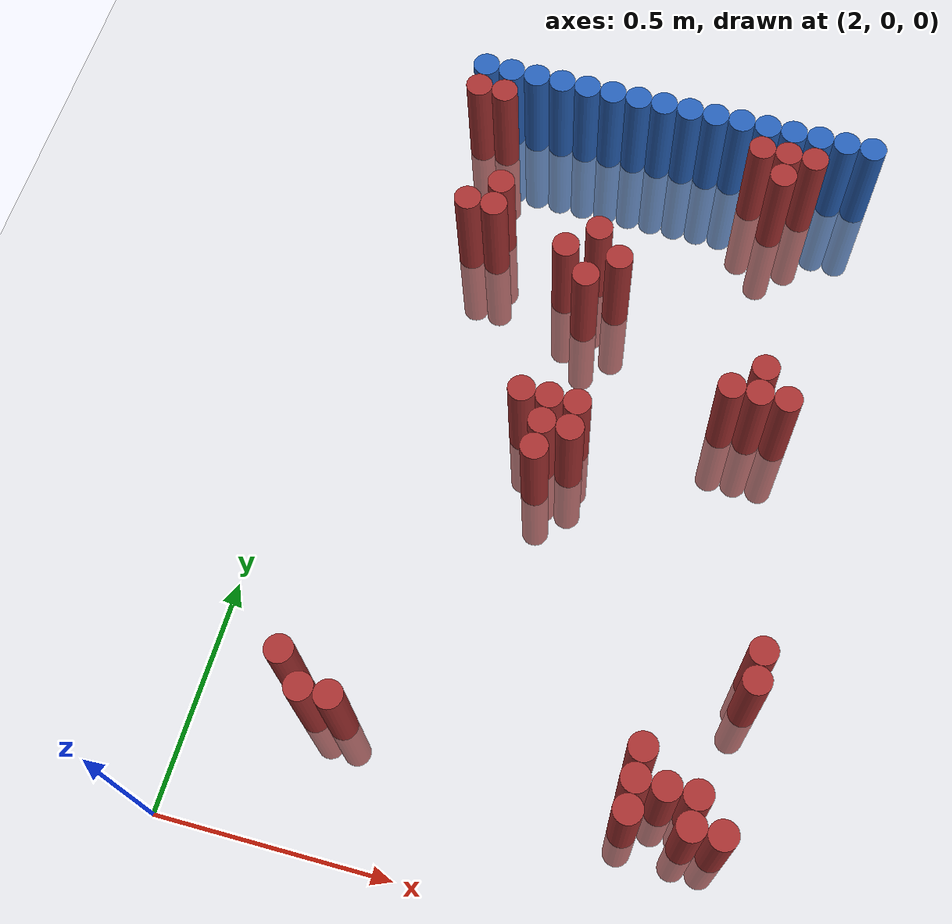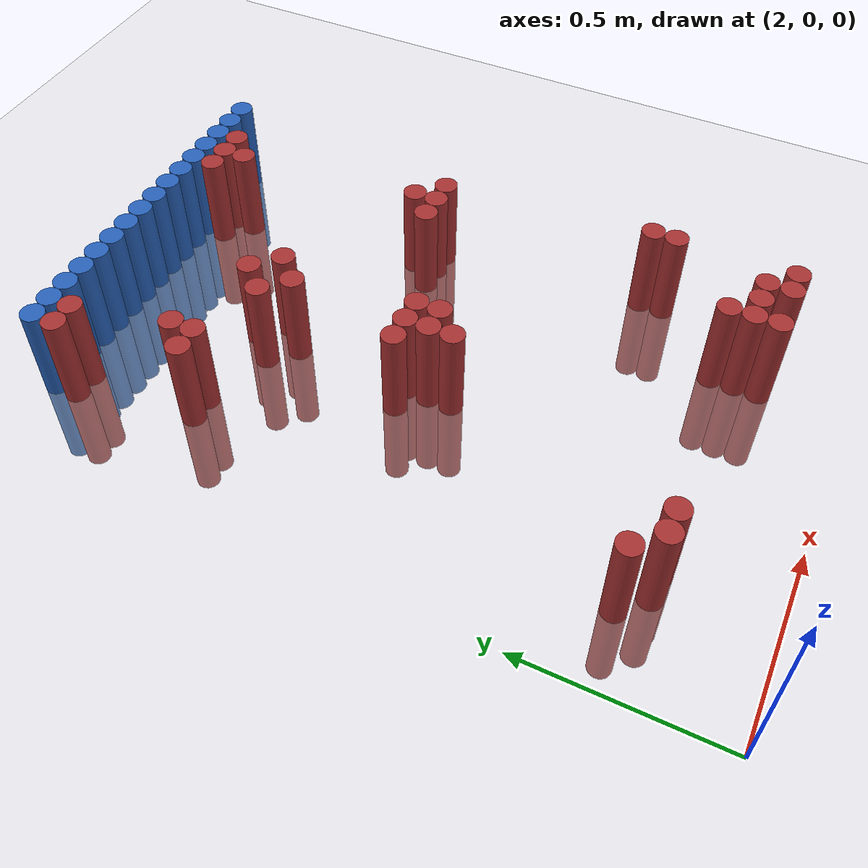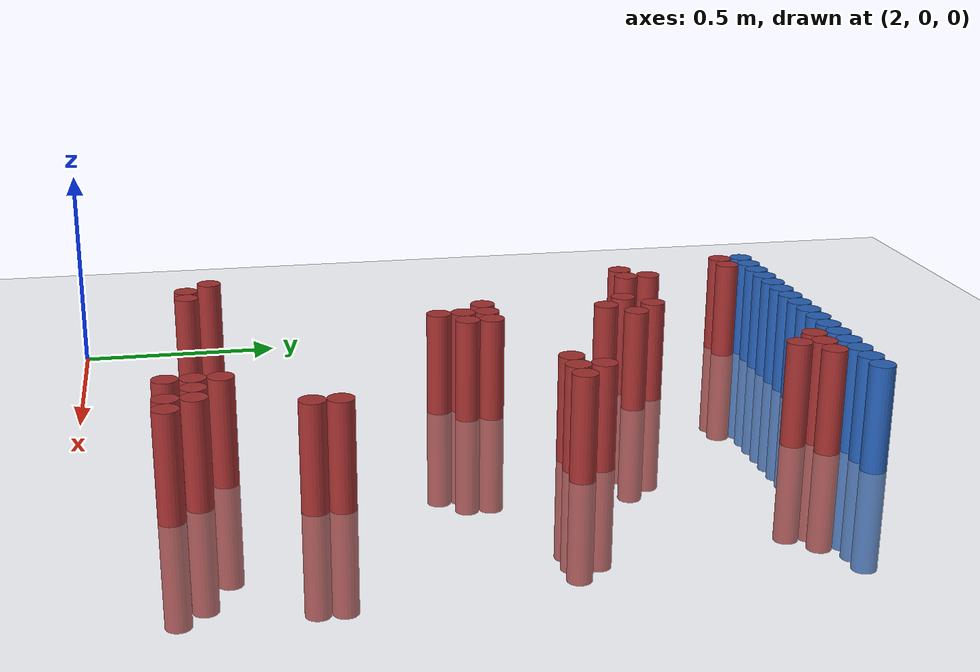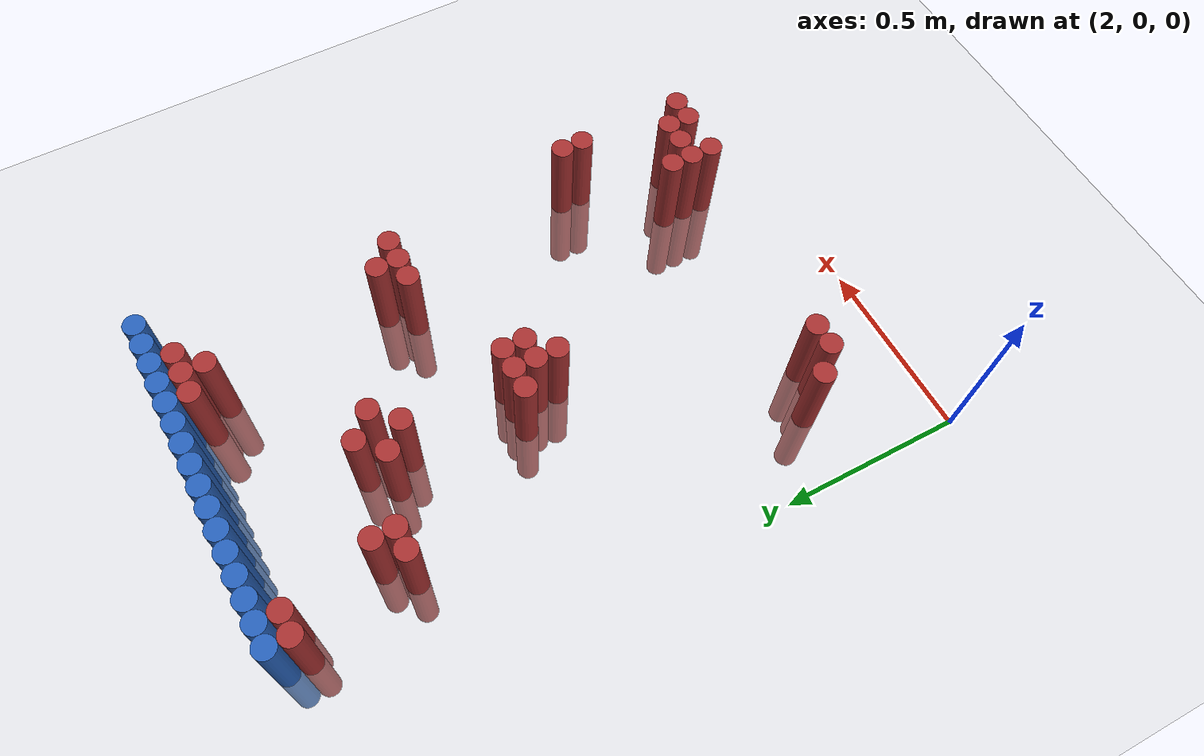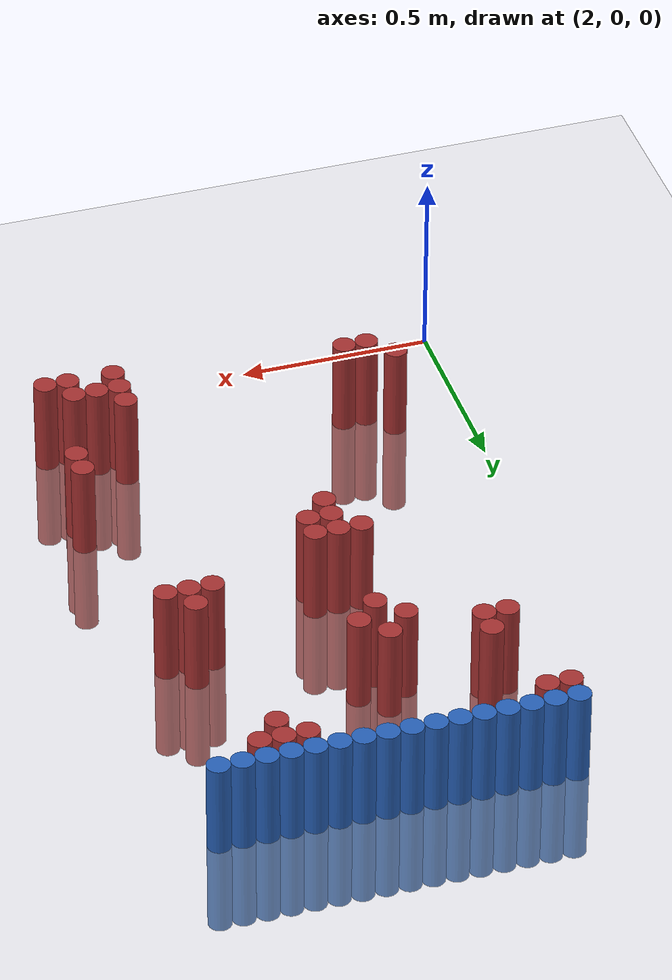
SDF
<sdf version="1.6">
 <world name="default">
  <model name="ground_plane">
   <static>1</static>
   <link name="link">
    <collision name="collision">
     <geometry><plane><normal>0 0 1</normal><size>100 100</size></plane></geometry>
     <surface><friction><ode><mu>100</mu><mu2>50</mu2></ode></friction></surface>
    </collision>
    <visual name="visual">
     <cast_shadows>0</cast_shadows>
     <geometry><plane><normal>0 0 1</normal><size>100 100</size></plane></geometry>
     <material>
      <script><uri>file://media/materials/scripts/gazebo.material</uri><name>Gazebo/Grey</name></script>
     </material>
    </visual>
   </link>
  </model>
  <model name="unit_cylinder_97">
   <static>1</static>
   <pose>2.190000 1.770000 0.000000 0.000000 0.000000 0.000000</pose>
   <link name="link">
    <inertial>
     <mass>1</mass>
     <inertia><ixx>0.145833</ixx><ixy>0</ixy><ixz>0</ixz><iyy>0.145833</iyy><iyz>0</iyz><izz>0.125</izz></inertia>
    </inertial>
    <collision name="collision">
     <geometry><cylinder><radius>0.030000</radius><length>0.5</length></cylinder></geometry>
    </collision>
    <visual name="visual">
     <geometry><cylinder><radius>0.030000</radius><length>0.5</length></cylinder></geometry>
     <material>
      <ambient>0.152000 0.379000 0.720000 1</ambient>
      <diffuse>0.152000 0.379000 0.720000 1</diffuse>
     </material>
     <material>
      <script><name>Gazebo/Grey</name><uri>file://media/materials/scripts/gazebo.material</uri></script>
     </material>
    </visual>
   </link>
  </model>
  <model name="unit_cylinder_98">
   <static>1</static>
   <pose>2.250000 1.770000 0.000000 0.000000 0.000000 0.000000</pose>
   <link name="link">
    <inertial>
     <mass>1</mass>
     <inertia><ixx>0.145833</ixx><ixy>0</ixy><ixz>0</ixz><iyy>0.145833</iyy><iyz>0</iyz><izz>0.125</izz></inertia>
    </inertial>
    <collision name="collision">
     <geometry><cylinder><radius>0.030000</radius><length>0.5</length></cylinder></geometry>
    </collision>
    <visual name="visual">
     <geometry><cylinder><radius>0.030000</radius><length>0.5</length></cylinder></geometry>
     <material>
      <ambient>0.152000 0.379000 0.720000 1</ambient>
      <diffuse>0.152000 0.379000 0.720000 1</diffuse>
     </material>
     <material>
      <script><name>Gazebo/Grey</name><uri>file://media/materials/scripts/gazebo.material</uri></script>
     </material>
    </visual>
   </link>
  </model>
  <model name="unit_cylinder_99">
   <static>1</static>
   <pose>2.310000 1.770000 0.000000 0.000000 0.000000 0.000000</pose>
   <link name="link">
    <inertial>
     <mass>1</mass>
     <inertia><ixx>0.145833</ixx><ixy>0</ixy><ixz>0</ixz><iyy>0.145833</iyy><iyz>0</iyz><izz>0.125</izz></inertia>
    </inertial>
    <collision name="collision">
     <geometry><cylinder><radius>0.030000</radius><length>0.5</length></cylinder></geometry>
    </collision>
    <visual name="visual">
     <geometry><cylinder><radius>0.030000</radius><length>0.5</length></cylinder></geometry>
     <material>
      <ambient>0.152000 0.379000 0.720000 1</ambient>
      <diffuse>0.152000 0.379000 0.720000 1</diffuse>
     </material>
     <material>
      <script><name>Gazebo/Grey</name><uri>file://media/materials/scripts/gazebo.material</uri></script>
     </material>
    </visual>
   </link>
  </model>
  <model name="unit_cylinder_100">
   <static>1</static>
   <pose>2.370000 1.770000 0.000000 0.000000 0.000000 0.000000</pose>
   <link name="link">
    <inertial>
     <mass>1</mass>
     <inertia><ixx>0.145833</ixx><ixy>0</ixy><ixz>0</ixz><iyy>0.145833</iyy><iyz>0</iyz><izz>0.125</izz></inertia>
    </inertial>
    <collision name="collision">
     <geometry><cylinder><radius>0.030000</radius><length>0.5</length></cylinder></geometry>
    </collision>
    <visual name="visual">
     <geometry><cylinder><radius>0.030000</radius><length>0.5</length></cylinder></geometry>
     <material>
      <ambient>0.152000 0.379000 0.720000 1</ambient>
      <diffuse>0.152000 0.379000 0.720000 1</diffuse>
     </material>
     <material>
      <script><name>Gazebo/Grey</name><uri>file://media/materials/scripts/gazebo.material</uri></script>
     </material>
    </visual>
   </link>
  </model>
  <model name="unit_cylinder_101">
   <static>1</static>
   <pose>2.430000 1.770000 0.000000 0.000000 0.000000 0.000000</pose>
   <link name="link">
    <inertial>
     <mass>1</mass>
     <inertia><ixx>0.145833</ixx><ixy>0</ixy><ixz>0</ixz><iyy>0.145833</iyy><iyz>0</iyz><izz>0.125</izz></inertia>
    </inertial>
    <collision name="collision">
     <geometry><cylinder><radius>0.030000</radius><length>0.5</length></cylinder></geometry>
    </collision>
    <visual name="visual">
     <geometry><cylinder><radius>0.030000</radius><length>0.5</length></cylinder></geometry>
     <material>
      <ambient>0.152000 0.379000 0.720000 1</ambient>
      <diffuse>0.152000 0.379000 0.720000 1</diffuse>
     </material>
     <material>
      <script><name>Gazebo/Grey</name><uri>file://media/materials/scripts/gazebo.material</uri></script>
     </material>
    </visual>
   </link>
  </model>
  <model name="unit_cylinder_102">
   <static>1</static>
   <pose>2.490000 1.770000 0.000000 0.000000 0.000000 0.000000</pose>
   <link name="link">
    <inertial>
     <mass>1</mass>
     <inertia><ixx>0.145833</ixx><ixy>0</ixy><ixz>0</ixz><iyy>0.145833</iyy><iyz>0</iyz><izz>0.125</izz></inertia>
    </inertial>
    <collision name="collision">
     <geometry><cylinder><radius>0.030000</radius><length>0.5</length></cylinder></geometry>
    </collision>
    <visual name="visual">
     <geometry><cylinder><radius>0.030000</radius><length>0.5</length></cylinder></geometry>
     <material>
      <ambient>0.152000 0.379000 0.720000 1</ambient>
      <diffuse>0.152000 0.379000 0.720000 1</diffuse>
     </material>
     <material>
      <script><name>Gazebo/Grey</name><uri>file://media/materials/scripts/gazebo.material</uri></script>
     </material>
    </visual>
   </link>
  </model>
  <model name="unit_cylinder_103">
   <static>1</static>
   <pose>2.550000 1.770000 0.000000 0.000000 0.000000 0.000000</pose>
   <link name="link">
    <inertial>
     <mass>1</mass>
     <inertia><ixx>0.145833</ixx><ixy>0</ixy><ixz>0</ixz><iyy>0.145833</iyy><iyz>0</iyz><izz>0.125</izz></inertia>
    </inertial>
    <collision name="collision">
     <geometry><cylinder><radius>0.030000</radius><length>0.5</length></cylinder></geometry>
    </collision>
    <visual name="visual">
     <geometry><cylinder><radius>0.030000</radius><length>0.5</length></cylinder></geometry>
     <material>
      <ambient>0.152000 0.379000 0.720000 1</ambient>
      <diffuse>0.152000 0.379000 0.720000 1</diffuse>
     </material>
     <material>
      <script><name>Gazebo/Grey</name><uri>file://media/materials/scripts/gazebo.material</uri></script>
     </material>
    </visual>
   </link>
  </model>
  <model name="unit_cylinder_104">
   <static>1</static>
   <pose>2.610000 1.770000 0.000000 0.000000 0.000000 0.000000</pose>
   <link name="link">
    <inertial>
     <mass>1</mass>
     <inertia><ixx>0.145833</ixx><ixy>0</ixy><ixz>0</ixz><iyy>0.145833</iyy><iyz>0</iyz><izz>0.125</izz></inertia>
    </inertial>
    <collision name="collision">
     <geometry><cylinder><radius>0.030000</radius><length>0.5</length></cylinder></geometry>
    </collision>
    <visual name="visual">
     <geometry><cylinder><radius>0.030000</radius><length>0.5</length></cylinder></geometry>
     <material>
      <ambient>0.152000 0.379000 0.720000 1</ambient>
      <diffuse>0.152000 0.379000 0.720000 1</diffuse>
     </material>
     <material>
      <script><name>Gazebo/Grey</name><uri>file://media/materials/scripts/gazebo.material</uri></script>
     </material>
    </visual>
   </link>
  </model>
  <model name="unit_cylinder_105">
   <static>1</static>
   <pose>2.670000 1.770000 0.000000 0.000000 0.000000 0.000000</pose>
   <link name="link">
    <inertial>
     <mass>1</mass>
     <inertia><ixx>0.145833</ixx><ixy>0</ixy><ixz>0</ixz><iyy>0.145833</iyy><iyz>0</iyz><izz>0.125</izz></inertia>
    </inertial>
    <collision name="collision">
     <geometry><cylinder><radius>0.030000</radius><length>0.5</length></cylinder></geometry>
    </collision>
    <visual name="visual">
     <geometry><cylinder><radius>0.030000</radius><length>0.5</length></cylinder></geometry>
     <material>
      <ambient>0.152000 0.379000 0.720000 1</ambient>
      <diffuse>0.152000 0.379000 0.720000 1</diffuse>
     </material>
     <material>
      <script><name>Gazebo/Grey</name><uri>file://media/materials/scripts/gazebo.material</uri></script>
     </material>
    </visual>
   </link>
  </model>
  <model name="unit_cylinder_106">
   <static>1</static>
   <pose>2.730000 1.770000 0.000000 0.000000 0.000000 0.000000</pose>
   <link name="link">
    <inertial>
     <mass>1</mass>
     <inertia><ixx>0.145833</ixx><ixy>0</ixy><ixz>0</ixz><iyy>0.145833</iyy><iyz>0</iyz><izz>0.125</izz></inertia>
    </inertial>
    <collision name="collision">
     <geometry><cylinder><radius>0.030000</radius><length>0.5</length></cylinder></geometry>
    </collision>
    <visual name="visual">
     <geometry><cylinder><radius>0.030000</radius><length>0.5</length></cylinder></geometry>
     <material>
      <ambient>0.152000 0.379000 0.720000 1</ambient>
      <diffuse>0.152000 0.379000 0.720000 1</diffuse>
     </material>
     <material>
      <script><name>Gazebo/Grey</name><uri>file://media/materials/scripts/gazebo.material</uri></script>
     </material>
    </visual>
   </link>
  </model>
  <model name="unit_cylinder_107">
   <static>1</static>
   <pose>2.790000 1.770000 0.000000 0.000000 0.000000 0.000000</pose>
   <link name="link">
    <inertial>
     <mass>1</mass>
     <inertia><ixx>0.145833</ixx><ixy>0</ixy><ixz>0</ixz><iyy>0.145833</iyy><iyz>0</iyz><izz>0.125</izz></inertia>
    </inertial>
    <collision name="collision">
     <geometry><cylinder><radius>0.030000</radius><length>0.5</length></cylinder></geometry>
    </collision>
    <visual name="visual">
     <geometry><cylinder><radius>0.030000</radius><length>0.5</length></cylinder></geometry>
     <material>
      <ambient>0.152000 0.379000 0.720000 1</ambient>
      <diffuse>0.152000 0.379000 0.720000 1</diffuse>
     </material>
     <material>
      <script><name>Gazebo/Grey</name><uri>file://media/materials/scripts/gazebo.material</uri></script>
     </material>
    </visual>
   </link>
  </model>
  <model name="unit_cylinder_108">
   <static>1</static>
   <pose>2.850000 1.770000 0.000000 0.000000 0.000000 0.000000</pose>
   <link name="link">
    <inertial>
     <mass>1</mass>
     <inertia><ixx>0.145833</ixx><ixy>0</ixy><ixz>0</ixz><iyy>0.145833</iyy><iyz>0</iyz><izz>0.125</izz></inertia>
    </inertial>
    <collision name="collision">
     <geometry><cylinder><radius>0.030000</radius><length>0.5</length></cylinder></geometry>
    </collision>
    <visual name="visual">
     <geometry><cylinder><radius>0.030000</radius><length>0.5</length></cylinder></geometry>
     <material>
      <ambient>0.152000 0.379000 0.720000 1</ambient>
      <diffuse>0.152000 0.379000 0.720000 1</diffuse>
     </material>
     <material>
      <script><name>Gazebo/Grey</name><uri>file://media/materials/scripts/gazebo.material</uri></script>
     </material>
    </visual>
   </link>
  </model>
  <model name="unit_cylinder_109">
   <static>1</static>
   <pose>2.910000 1.770000 0.000000 0.000000 0.000000 0.000000</pose>
   <link name="link">
    <inertial>
     <mass>1</mass>
     <inertia><ixx>0.145833</ixx><ixy>0</ixy><ixz>0</ixz><iyy>0.145833</iyy><iyz>0</iyz><izz>0.125</izz></inertia>
    </inertial>
    <collision name="collision">
     <geometry><cylinder><radius>0.030000</radius><length>0.5</length></cylinder></geometry>
    </collision>
    <visual name="visual">
     <geometry><cylinder><radius>0.030000</radius><length>0.5</length></cylinder></geometry>
     <material>
      <ambient>0.152000 0.379000 0.720000 1</ambient>
      <diffuse>0.152000 0.379000 0.720000 1</diffuse>
     </material>
     <material>
      <script><name>Gazebo/Grey</name><uri>file://media/materials/scripts/gazebo.material</uri></script>
     </material>
    </visual>
   </link>
  </model>
  <model name="unit_cylinder_110">
   <static>1</static>
   <pose>2.970000 1.770000 0.000000 0.000000 0.000000 0.000000</pose>
   <link name="link">
    <inertial>
     <mass>1</mass>
     <inertia><ixx>0.145833</ixx><ixy>0</ixy><ixz>0</ixz><iyy>0.145833</iyy><iyz>0</iyz><izz>0.125</izz></inertia>
    </inertial>
    <collision name="collision">
     <geometry><cylinder><radius>0.030000</radius><length>0.5</length></cylinder></geometry>
    </collision>
    <visual name="visual">
     <geometry><cylinder><radius>0.030000</radius><length>0.5</length></cylinder></geometry>
     <material>
      <ambient>0.152000 0.379000 0.720000 1</ambient>
      <diffuse>0.152000 0.379000 0.720000 1</diffuse>
     </material>
     <material>
      <script><name>Gazebo/Grey</name><uri>file://media/materials/scripts/gazebo.material</uri></script>
     </material>
    </visual>
   </link>
  </model>
  <model name="unit_cylinder_111">
   <static>1</static>
   <pose>3.030000 1.770000 0.000000 0.000000 0.000000 0.000000</pose>
   <link name="link">
    <inertial>
     <mass>1</mass>
     <inertia><ixx>0.145833</ixx><ixy>0</ixy><ixz>0</ixz><iyy>0.145833</iyy><iyz>0</iyz><izz>0.125</izz></inertia>
    </inertial>
    <collision name="collision">
     <geometry><cylinder><radius>0.030000</radius><length>0.5</length></cylinder></geometry>
    </collision>
    <visual name="visual">
     <geometry><cylinder><radius>0.030000</radius><length>0.5</length></cylinder></geometry>
     <material>
      <ambient>0.152000 0.379000 0.720000 1</ambient>
      <diffuse>0.152000 0.379000 0.720000 1</diffuse>
     </material>
     <material>
      <script><name>Gazebo/Grey</name><uri>file://media/materials/scripts/gazebo.material</uri></script>
     </material>
    </visual>
   </link>
  </model>
  <model name="unit_cylinder_112">
   <static>1</static>
   <pose>3.090000 1.770000 0.000000 0.000000 0.000000 0.000000</pose>
   <link name="link">
    <inertial>
     <mass>1</mass>
     <inertia><ixx>0.145833</ixx><ixy>0</ixy><ixz>0</ixz><iyy>0.145833</iyy><iyz>0</iyz><izz>0.125</izz></inertia>
    </inertial>
    <collision name="collision">
     <geometry><cylinder><radius>0.030000</radius><length>0.5</length></cylinder></geometry>
    </collision>
    <visual name="visual">
     <geometry><cylinder><radius>0.030000</radius><length>0.5</length></cylinder></geometry>
     <material>
      <ambient>0.152000 0.379000 0.720000 1</ambient>
      <diffuse>0.152000 0.379000 0.720000 1</diffuse>
     </material>
     <material>
      <script><name>Gazebo/Grey</name><uri>file://media/materials/scripts/gazebo.material</uri></script>
     </material>
    </visual>
   </link>
  </model>
  <model name="unit_cylinder_126">
   <static>1</static>
   <pose>2.190000 1.710000 0.000000 0.000000 0.000000 0.000000</pose>
   <link name="link">
    <inertial>
     <mass>1</mass>
     <inertia><ixx>0.145833</ixx><ixy>0</ixy><ixz>0</ixz><iyy>0.145833</iyy><iyz>0</iyz><izz>0.125</izz></inertia>
    </inertial>
    <collision name="collision">
     <geometry><cylinder><radius>0.030000</radius><length>0.5</length></cylinder></geometry>
    </collision>
    <visual name="visual">
     <geometry><cylinder><radius>0.030000</radius><length>0.5</length></cylinder></geometry>
     <material>
      <ambient>0.648000 0.192000 0.192000 1</ambient>
      <diffuse>0.648000 0.192000 0.192000 1</diffuse>
     </material>
     <material>
      <script><name>Gazebo/Grey</name><uri>file://media/materials/scripts/gazebo.material</uri></script>
     </material>
    </visual>
   </link>
  </model>
  <model name="unit_cylinder_127">
   <static>1</static>
   <pose>2.250000 1.710000 0.000000 0.000000 0.000000 0.000000</pose>
   <link name="link">
    <inertial>
     <mass>1</mass>
     <inertia><ixx>0.145833</ixx><ixy>0</ixy><ixz>0</ixz><iyy>0.145833</iyy><iyz>0</iyz><izz>0.125</izz></inertia>
    </inertial>
    <collision name="collision">
     <geometry><cylinder><radius>0.030000</radius><length>0.5</length></cylinder></geometry>
    </collision>
    <visual name="visual">
     <geometry><cylinder><radius>0.030000</radius><length>0.5</length></cylinder></geometry>
     <material>
      <ambient>0.648000 0.192000 0.192000 1</ambient>
      <diffuse>0.648000 0.192000 0.192000 1</diffuse>
     </material>
     <material>
      <script><name>Gazebo/Grey</name><uri>file://media/materials/scripts/gazebo.material</uri></script>
     </material>
    </visual>
   </link>
  </model>
  <model name="unit_cylinder_128">
   <static>1</static>
   <pose>2.850000 1.710000 0.000000 0.000000 0.000000 0.000000</pose>
   <link name="link">
    <inertial>
     <mass>1</mass>
     <inertia><ixx>0.145833</ixx><ixy>0</ixy><ixz>0</ixz><iyy>0.145833</iyy><iyz>0</iyz><izz>0.125</izz></inertia>
    </inertial>
    <collision name="collision">
     <geometry><cylinder><radius>0.030000</radius><length>0.5</length></cylinder></geometry>
    </collision>
    <visual name="visual">
     <geometry><cylinder><radius>0.030000</radius><length>0.5</length></cylinder></geometry>
     <material>
      <ambient>0.648000 0.192000 0.192000 1</ambient>
      <diffuse>0.648000 0.192000 0.192000 1</diffuse>
     </material>
     <material>
      <script><name>Gazebo/Grey</name><uri>file://media/materials/scripts/gazebo.material</uri></script>
     </material>
    </visual>
   </link>
  </model>
  <model name="unit_cylinder_129">
   <static>1</static>
   <pose>2.910000 1.710000 0.000000 0.000000 0.000000 0.000000</pose>
   <link name="link">
    <inertial>
     <mass>1</mass>
     <inertia><ixx>0.145833</ixx><ixy>0</ixy><ixz>0</ixz><iyy>0.145833</iyy><iyz>0</iyz><izz>0.125</izz></inertia>
    </inertial>
    <collision name="collision">
     <geometry><cylinder><radius>0.030000</radius><length>0.5</length></cylinder></geometry>
    </collision>
    <visual name="visual">
     <geometry><cylinder><radius>0.030000</radius><length>0.5</length></cylinder></geometry>
     <material>
      <ambient>0.648000 0.192000 0.192000 1</ambient>
      <diffuse>0.648000 0.192000 0.192000 1</diffuse>
     </material>
     <material>
      <script><name>Gazebo/Grey</name><uri>file://media/materials/scripts/gazebo.material</uri></script>
     </material>
    </visual>
   </link>
  </model>
  <model name="unit_cylinder_130">
   <static>1</static>
   <pose>2.970000 1.710000 0.000000 0.000000 0.000000 0.000000</pose>
   <link name="link">
    <inertial>
     <mass>1</mass>
     <inertia><ixx>0.145833</ixx><ixy>0</ixy><ixz>0</ixz><iyy>0.145833</iyy><iyz>0</iyz><izz>0.125</izz></inertia>
    </inertial>
    <collision name="collision">
     <geometry><cylinder><radius>0.030000</radius><length>0.5</length></cylinder></geometry>
    </collision>
    <visual name="visual">
     <geometry><cylinder><radius>0.030000</radius><length>0.5</length></cylinder></geometry>
     <material>
      <ambient>0.648000 0.192000 0.192000 1</ambient>
      <diffuse>0.648000 0.192000 0.192000 1</diffuse>
     </material>
     <material>
      <script><name>Gazebo/Grey</name><uri>file://media/materials/scripts/gazebo.material</uri></script>
     </material>
    </visual>
   </link>
  </model>
  <model name="unit_cylinder_137">
   <static>1</static>
   <pose>2.910000 1.650000 0.000000 0.000000 0.000000 0.000000</pose>
   <link name="link">
    <inertial>
     <mass>1</mass>
     <inertia><ixx>0.145833</ixx><ixy>0</ixy><ixz>0</ixz><iyy>0.145833</iyy><iyz>0</iyz><izz>0.125</izz></inertia>
    </inertial>
    <collision name="collision">
     <geometry><cylinder><radius>0.030000</radius><length>0.5</length></cylinder></geometry>
    </collision>
    <visual name="visual">
     <geometry><cylinder><radius>0.030000</radius><length>0.5</length></cylinder></geometry>
     <material>
      <ambient>0.648000 0.192000 0.192000 1</ambient>
      <diffuse>0.648000 0.192000 0.192000 1</diffuse>
     </material>
     <material>
      <script><name>Gazebo/Grey</name><uri>file://media/materials/scripts/gazebo.material</uri></script>
     </material>
    </visual>
   </link>
  </model>
  <model name="unit_cylinder_143">
   <static>1</static>
   <pose>2.310000 1.470000 0.000000 0.000000 0.000000 0.000000</pose>
   <link name="link">
    <inertial>
     <mass>1</mass>
     <inertia><ixx>0.145833</ixx><ixy>0</ixy><ixz>0</ixz><iyy>0.145833</iyy><iyz>0</iyz><izz>0.125</izz></inertia>
    </inertial>
    <collision name="collision">
     <geometry><cylinder><radius>0.030000</radius><length>0.5</length></cylinder></geometry>
    </collision>
    <visual name="visual">
     <geometry><cylinder><radius>0.030000</radius><length>0.5</length></cylinder></geometry>
     <material>
      <ambient>0.648000 0.192000 0.192000 1</ambient>
      <diffuse>0.648000 0.192000 0.192000 1</diffuse>
     </material>
     <material>
      <script><name>Gazebo/Grey</name><uri>file://media/materials/scripts/gazebo.material</uri></script>
     </material>
    </visual>
   </link>
  </model>
  <model name="unit_cylinder_148">
   <static>1</static>
   <pose>2.250000 1.410000 0.000000 0.000000 0.000000 0.000000</pose>
   <link name="link">
    <inertial>
     <mass>1</mass>
     <inertia><ixx>0.145833</ixx><ixy>0</ixy><ixz>0</ixz><iyy>0.145833</iyy><iyz>0</iyz><izz>0.125</izz></inertia>
    </inertial>
    <collision name="collision">
     <geometry><cylinder><radius>0.030000</radius><length>0.5</length></cylinder></geometry>
    </collision>
    <visual name="visual">
     <geometry><cylinder><radius>0.030000</radius><length>0.5</length></cylinder></geometry>
     <material>
      <ambient>0.648000 0.192000 0.192000 1</ambient>
      <diffuse>0.648000 0.192000 0.192000 1</diffuse>
     </material>
     <material>
      <script><name>Gazebo/Grey</name><uri>file://media/materials/scripts/gazebo.material</uri></script>
     </material>
    </visual>
   </link>
  </model>
  <model name="unit_cylinder_149">
   <static>1</static>
   <pose>2.310000 1.410000 0.000000 0.000000 0.000000 0.000000</pose>
   <link name="link">
    <inertial>
     <mass>1</mass>
     <inertia><ixx>0.145833</ixx><ixy>0</ixy><ixz>0</ixz><iyy>0.145833</iyy><iyz>0</iyz><izz>0.125</izz></inertia>
    </inertial>
    <collision name="collision">
     <geometry><cylinder><radius>0.030000</radius><length>0.5</length></cylinder></geometry>
    </collision>
    <visual name="visual">
     <geometry><cylinder><radius>0.030000</radius><length>0.5</length></cylinder></geometry>
     <material>
      <ambient>0.648000 0.192000 0.192000 1</ambient>
      <diffuse>0.648000 0.192000 0.192000 1</diffuse>
     </material>
     <material>
      <script><name>Gazebo/Grey</name><uri>file://media/materials/scripts/gazebo.material</uri></script>
     </material>
    </visual>
   </link>
  </model>
  <model name="unit_cylinder_150">
   <static>1</static>
   <pose>2.550000 1.410000 0.000000 0.000000 0.000000 0.000000</pose>
   <link name="link">
    <inertial>
     <mass>1</mass>
     <inertia><ixx>0.145833</ixx><ixy>0</ixy><ixz>0</ixz><iyy>0.145833</iyy><iyz>0</iyz><izz>0.125</izz></inertia>
    </inertial>
    <collision name="collision">
     <geometry><cylinder><radius>0.030000</radius><length>0.5</length></cylinder></geometry>
    </collision>
    <visual name="visual">
     <geometry><cylinder><radius>0.030000</radius><length>0.5</length></cylinder></geometry>
     <material>
      <ambient>0.648000 0.192000 0.192000 1</ambient>
      <diffuse>0.648000 0.192000 0.192000 1</diffuse>
     </material>
     <material>
      <script><name>Gazebo/Grey</name><uri>file://media/materials/scripts/gazebo.material</uri></script>
     </material>
    </visual>
   </link>
  </model>
  <model name="unit_cylinder_156">
   <static>1</static>
   <pose>2.490000 1.350000 0.000000 0.000000 0.000000 0.000000</pose>
   <link name="link">
    <inertial>
     <mass>1</mass>
     <inertia><ixx>0.145833</ixx><ixy>0</ixy><ixz>0</ixz><iyy>0.145833</iyy><iyz>0</iyz><izz>0.125</izz></inertia>
    </inertial>
    <collision name="collision">
     <geometry><cylinder><radius>0.030000</radius><length>0.5</length></cylinder></geometry>
    </collision>
    <visual name="visual">
     <geometry><cylinder><radius>0.030000</radius><length>0.5</length></cylinder></geometry>
     <material>
      <ambient>0.648000 0.192000 0.192000 1</ambient>
      <diffuse>0.648000 0.192000 0.192000 1</diffuse>
     </material>
     <material>
      <script><name>Gazebo/Grey</name><uri>file://media/materials/scripts/gazebo.material</uri></script>
     </material>
    </visual>
   </link>
  </model>
  <model name="unit_cylinder_157">
   <static>1</static>
   <pose>2.610000 1.350000 0.000000 0.000000 0.000000 0.000000</pose>
   <link name="link">
    <inertial>
     <mass>1</mass>
     <inertia><ixx>0.145833</ixx><ixy>0</ixy><ixz>0</ixz><iyy>0.145833</iyy><iyz>0</iyz><izz>0.125</izz></inertia>
    </inertial>
    <collision name="collision">
     <geometry><cylinder><radius>0.030000</radius><length>0.5</length></cylinder></geometry>
    </collision>
    <visual name="visual">
     <geometry><cylinder><radius>0.030000</radius><length>0.5</length></cylinder></geometry>
     <material>
      <ambient>0.648000 0.192000 0.192000 1</ambient>
      <diffuse>0.648000 0.192000 0.192000 1</diffuse>
     </material>
     <material>
      <script><name>Gazebo/Grey</name><uri>file://media/materials/scripts/gazebo.material</uri></script>
     </material>
    </visual>
   </link>
  </model>
  <model name="unit_cylinder_161">
   <static>1</static>
   <pose>2.550000 1.290000 0.000000 0.000000 0.000000 0.000000</pose>
   <link name="link">
    <inertial>
     <mass>1</mass>
     <inertia><ixx>0.145833</ixx><ixy>0</ixy><ixz>0</ixz><iyy>0.145833</iyy><iyz>0</iyz><izz>0.125</izz></inertia>
    </inertial>
    <collision name="collision">
     <geometry><cylinder><radius>0.030000</radius><length>0.5</length></cylinder></geometry>
    </collision>
    <visual name="visual">
     <geometry><cylinder><radius>0.030000</radius><length>0.5</length></cylinder></geometry>
     <material>
      <ambient>0.648000 0.192000 0.192000 1</ambient>
      <diffuse>0.648000 0.192000 0.192000 1</diffuse>
     </material>
     <material>
      <script><name>Gazebo/Grey</name><uri>file://media/materials/scripts/gazebo.material</uri></script>
     </material>
    </visual>
   </link>
  </model>
  <model name="unit_cylinder_162">
   <static>1</static>
   <pose>2.970000 1.170000 0.000000 0.000000 0.000000 0.000000</pose>
   <link name="link">
    <inertial>
     <mass>1</mass>
     <inertia><ixx>0.145833</ixx><ixy>0</ixy><ixz>0</ixz><iyy>0.145833</iyy><iyz>0</iyz><izz>0.125</izz></inertia>
    </inertial>
    <collision name="collision">
     <geometry><cylinder><radius>0.030000</radius><length>0.5</length></cylinder></geometry>
    </collision>
    <visual name="visual">
     <geometry><cylinder><radius>0.030000</radius><length>0.5</length></cylinder></geometry>
     <material>
      <ambient>0.648000 0.192000 0.192000 1</ambient>
      <diffuse>0.648000 0.192000 0.192000 1</diffuse>
     </material>
     <material>
      <script><name>Gazebo/Grey</name><uri>file://media/materials/scripts/gazebo.material</uri></script>
     </material>
    </visual>
   </link>
  </model>
  <model name="unit_cylinder_163">
   <static>1</static>
   <pose>2.910000 1.110000 0.000000 0.000000 0.000000 0.000000</pose>
   <link name="link">
    <inertial>
     <mass>1</mass>
     <inertia><ixx>0.145833</ixx><ixy>0</ixy><ixz>0</ixz><iyy>0.145833</iyy><iyz>0</iyz><izz>0.125</izz></inertia>
    </inertial>
    <collision name="collision">
     <geometry><cylinder><radius>0.030000</radius><length>0.5</length></cylinder></geometry>
    </collision>
    <visual name="visual">
     <geometry><cylinder><radius>0.030000</radius><length>0.5</length></cylinder></geometry>
     <material>
      <ambient>0.648000 0.192000 0.192000 1</ambient>
      <diffuse>0.648000 0.192000 0.192000 1</diffuse>
     </material>
     <material>
      <script><name>Gazebo/Grey</name><uri>file://media/materials/scripts/gazebo.material</uri></script>
     </material>
    </visual>
   </link>
  </model>
  <model name="unit_cylinder_164">
   <static>1</static>
   <pose>2.970000 1.110000 0.000000 0.000000 0.000000 0.000000</pose>
   <link name="link">
    <inertial>
     <mass>1</mass>
     <inertia><ixx>0.145833</ixx><ixy>0</ixy><ixz>0</ixz><iyy>0.145833</iyy><iyz>0</iyz><izz>0.125</izz></inertia>
    </inertial>
    <collision name="collision">
     <geometry><cylinder><radius>0.030000</radius><length>0.5</length></cylinder></geometry>
    </collision>
    <visual name="visual">
     <geometry><cylinder><radius>0.030000</radius><length>0.5</length></cylinder></geometry>
     <material>
      <ambient>0.648000 0.192000 0.192000 1</ambient>
      <diffuse>0.648000 0.192000 0.192000 1</diffuse>
     </material>
     <material>
      <script><name>Gazebo/Grey</name><uri>file://media/materials/scripts/gazebo.material</uri></script>
     </material>
    </visual>
   </link>
  </model>
  <model name="unit_cylinder_165">
   <static>1</static>
   <pose>3.030000 1.110000 0.000000 0.000000 0.000000 0.000000</pose>
   <link name="link">
    <inertial>
     <mass>1</mass>
     <inertia><ixx>0.145833</ixx><ixy>0</ixy><ixz>0</ixz><iyy>0.145833</iyy><iyz>0</iyz><izz>0.125</izz></inertia>
    </inertial>
    <collision name="collision">
     <geometry><cylinder><radius>0.030000</radius><length>0.5</length></cylinder></geometry>
    </collision>
    <visual name="visual">
     <geometry><cylinder><radius>0.030000</radius><length>0.5</length></cylinder></geometry>
     <material>
      <ambient>0.648000 0.192000 0.192000 1</ambient>
      <diffuse>0.648000 0.192000 0.192000 1</diffuse>
     </material>
     <material>
      <script><name>Gazebo/Grey</name><uri>file://media/materials/scripts/gazebo.material</uri></script>
     </material>
    </visual>
   </link>
  </model>
  <model name="unit_cylinder_168">
   <static>1</static>
   <pose>2.490000 0.990000 0.000000 0.000000 0.000000 0.000000</pose>
   <link name="link">
    <inertial>
     <mass>1</mass>
     <inertia><ixx>0.145833</ixx><ixy>0</ixy><ixz>0</ixz><iyy>0.145833</iyy><iyz>0</iyz><izz>0.125</izz></inertia>
    </inertial>
    <collision name="collision">
     <geometry><cylinder><radius>0.030000</radius><length>0.5</length></cylinder></geometry>
    </collision>
    <visual name="visual">
     <geometry><cylinder><radius>0.030000</radius><length>0.5</length></cylinder></geometry>
     <material>
      <ambient>0.648000 0.192000 0.192000 1</ambient>
      <diffuse>0.648000 0.192000 0.192000 1</diffuse>
     </material>
     <material>
      <script><name>Gazebo/Grey</name><uri>file://media/materials/scripts/gazebo.material</uri></script>
     </material>
    </visual>
   </link>
  </model>
  <model name="unit_cylinder_169">
   <static>1</static>
   <pose>2.550000 0.990000 0.000000 0.000000 0.000000 0.000000</pose>
   <link name="link">
    <inertial>
     <mass>1</mass>
     <inertia><ixx>0.145833</ixx><ixy>0</ixy><ixz>0</ixz><iyy>0.145833</iyy><iyz>0</iyz><izz>0.125</izz></inertia>
    </inertial>
    <collision name="collision">
     <geometry><cylinder><radius>0.030000</radius><length>0.5</length></cylinder></geometry>
    </collision>
    <visual name="visual">
     <geometry><cylinder><radius>0.030000</radius><length>0.5</length></cylinder></geometry>
     <material>
      <ambient>0.648000 0.192000 0.192000 1</ambient>
      <diffuse>0.648000 0.192000 0.192000 1</diffuse>
     </material>
     <material>
      <script><name>Gazebo/Grey</name><uri>file://media/materials/scripts/gazebo.material</uri></script>
     </material>
    </visual>
   </link>
  </model>
  <model name="unit_cylinder_170">
   <static>1</static>
   <pose>2.610000 0.990000 0.000000 0.000000 0.000000 0.000000</pose>
   <link name="link">
    <inertial>
     <mass>1</mass>
     <inertia><ixx>0.145833</ixx><ixy>0</ixy><ixz>0</ixz><iyy>0.145833</iyy><iyz>0</iyz><izz>0.125</izz></inertia>
    </inertial>
    <collision name="collision">
     <geometry><cylinder><radius>0.030000</radius><length>0.5</length></cylinder></geometry>
    </collision>
    <visual name="visual">
     <geometry><cylinder><radius>0.030000</radius><length>0.5</length></cylinder></geometry>
     <material>
      <ambient>0.648000 0.192000 0.192000 1</ambient>
      <diffuse>0.648000 0.192000 0.192000 1</diffuse>
     </material>
     <material>
      <script><name>Gazebo/Grey</name><uri>file://media/materials/scripts/gazebo.material</uri></script>
     </material>
    </visual>
   </link>
  </model>
  <model name="unit_cylinder_173">
   <static>1</static>
   <pose>2.550000 0.930000 0.000000 0.000000 0.000000 0.000000</pose>
   <link name="link">
    <inertial>
     <mass>1</mass>
     <inertia><ixx>0.145833</ixx><ixy>0</ixy><ixz>0</ixz><iyy>0.145833</iyy><iyz>0</iyz><izz>0.125</izz></inertia>
    </inertial>
    <collision name="collision">
     <geometry><cylinder><radius>0.030000</radius><length>0.5</length></cylinder></geometry>
    </collision>
    <visual name="visual">
     <geometry><cylinder><radius>0.030000</radius><length>0.5</length></cylinder></geometry>
     <material>
      <ambient>0.648000 0.192000 0.192000 1</ambient>
      <diffuse>0.648000 0.192000 0.192000 1</diffuse>
     </material>
     <material>
      <script><name>Gazebo/Grey</name><uri>file://media/materials/scripts/gazebo.material</uri></script>
     </material>
    </visual>
   </link>
  </model>
  <model name="unit_cylinder_174">
   <static>1</static>
   <pose>2.610000 0.930000 0.000000 0.000000 0.000000 0.000000</pose>
   <link name="link">
    <inertial>
     <mass>1</mass>
     <inertia><ixx>0.145833</ixx><ixy>0</ixy><ixz>0</ixz><iyy>0.145833</iyy><iyz>0</iyz><izz>0.125</izz></inertia>
    </inertial>
    <collision name="collision">
     <geometry><cylinder><radius>0.030000</radius><length>0.5</length></cylinder></geometry>
    </collision>
    <visual name="visual">
     <geometry><cylinder><radius>0.030000</radius><length>0.5</length></cylinder></geometry>
     <material>
      <ambient>0.648000 0.192000 0.192000 1</ambient>
      <diffuse>0.648000 0.192000 0.192000 1</diffuse>
     </material>
     <material>
      <script><name>Gazebo/Grey</name><uri>file://media/materials/scripts/gazebo.material</uri></script>
     </material>
    </visual>
   </link>
  </model>
  <model name="unit_cylinder_175">
   <static>1</static>
   <pose>2.550000 0.870000 0.000000 0.000000 0.000000 0.000000</pose>
   <link name="link">
    <inertial>
     <mass>1</mass>
     <inertia><ixx>0.145833</ixx><ixy>0</ixy><ixz>0</ixz><iyy>0.145833</iyy><iyz>0</iyz><izz>0.125</izz></inertia>
    </inertial>
    <collision name="collision">
     <geometry><cylinder><radius>0.030000</radius><length>0.5</length></cylinder></geometry>
    </collision>
    <visual name="visual">
     <geometry><cylinder><radius>0.030000</radius><length>0.5</length></cylinder></geometry>
     <material>
      <ambient>0.648000 0.192000 0.192000 1</ambient>
      <diffuse>0.648000 0.192000 0.192000 1</diffuse>
     </material>
     <material>
      <script><name>Gazebo/Grey</name><uri>file://media/materials/scripts/gazebo.material</uri></script>
     </material>
    </visual>
   </link>
  </model>
  <model name="unit_cylinder_180">
   <static>1</static>
   <pose>3.090000 0.570000 0.000000 0.000000 0.000000 0.000000</pose>
   <link name="link">
    <inertial>
     <mass>1</mass>
     <inertia><ixx>0.145833</ixx><ixy>0</ixy><ixz>0</ixz><iyy>0.145833</iyy><iyz>0</iyz><izz>0.125</izz></inertia>
    </inertial>
    <collision name="collision">
     <geometry><cylinder><radius>0.030000</radius><length>0.5</length></cylinder></geometry>
    </collision>
    <visual name="visual">
     <geometry><cylinder><radius>0.030000</radius><length>0.5</length></cylinder></geometry>
     <material>
      <ambient>0.648000 0.192000 0.192000 1</ambient>
      <diffuse>0.648000 0.192000 0.192000 1</diffuse>
     </material>
     <material>
      <script><name>Gazebo/Grey</name><uri>file://media/materials/scripts/gazebo.material</uri></script>
     </material>
    </visual>
   </link>
  </model>
  <model name="unit_cylinder_182">
   <static>1</static>
   <pose>3.090000 0.510000 0.000000 0.000000 0.000000 0.000000</pose>
   <link name="link">
    <inertial>
     <mass>1</mass>
     <inertia><ixx>0.145833</ixx><ixy>0</ixy><ixz>0</ixz><iyy>0.145833</iyy><iyz>0</iyz><izz>0.125</izz></inertia>
    </inertial>
    <collision name="collision">
     <geometry><cylinder><radius>0.030000</radius><length>0.5</length></cylinder></geometry>
    </collision>
    <visual name="visual">
     <geometry><cylinder><radius>0.030000</radius><length>0.5</length></cylinder></geometry>
     <material>
      <ambient>0.648000 0.192000 0.192000 1</ambient>
      <diffuse>0.648000 0.192000 0.192000 1</diffuse>
     </material>
     <material>
      <script><name>Gazebo/Grey</name><uri>file://media/materials/scripts/gazebo.material</uri></script>
     </material>
    </visual>
   </link>
  </model>
  <model name="unit_cylinder_189">
   <static>1</static>
   <pose>2.190000 0.330000 0.000000 0.000000 0.000000 0.000000</pose>
   <link name="link">
    <inertial>
     <mass>1</mass>
     <inertia><ixx>0.145833</ixx><ixy>0</ixy><ixz>0</ixz><iyy>0.145833</iyy><iyz>0</iyz><izz>0.125</izz></inertia>
    </inertial>
    <collision name="collision">
     <geometry><cylinder><radius>0.030000</radius><length>0.5</length></cylinder></geometry>
    </collision>
    <visual name="visual">
     <geometry><cylinder><radius>0.030000</radius><length>0.5</length></cylinder></geometry>
     <material>
      <ambient>0.648000 0.192000 0.192000 1</ambient>
      <diffuse>0.648000 0.192000 0.192000 1</diffuse>
     </material>
     <material>
      <script><name>Gazebo/Grey</name><uri>file://media/materials/scripts/gazebo.material</uri></script>
     </material>
    </visual>
   </link>
  </model>
  <model name="unit_cylinder_190">
   <static>1</static>
   <pose>2.910000 0.330000 0.000000 0.000000 0.000000 0.000000</pose>
   <link name="link">
    <inertial>
     <mass>1</mass>
     <inertia><ixx>0.145833</ixx><ixy>0</ixy><ixz>0</ixz><iyy>0.145833</iyy><iyz>0</iyz><izz>0.125</izz></inertia>
    </inertial>
    <collision name="collision">
     <geometry><cylinder><radius>0.030000</radius><length>0.5</length></cylinder></geometry>
    </collision>
    <visual name="visual">
     <geometry><cylinder><radius>0.030000</radius><length>0.5</length></cylinder></geometry>
     <material>
      <ambient>0.648000 0.192000 0.192000 1</ambient>
      <diffuse>0.648000 0.192000 0.192000 1</diffuse>
     </material>
     <material>
      <script><name>Gazebo/Grey</name><uri>file://media/materials/scripts/gazebo.material</uri></script>
     </material>
    </visual>
   </link>
  </model>
  <model name="unit_cylinder_192">
   <static>1</static>
   <pose>2.250000 0.270000 0.000000 0.000000 0.000000 0.000000</pose>
   <link name="link">
    <inertial>
     <mass>1</mass>
     <inertia><ixx>0.145833</ixx><ixy>0</ixy><ixz>0</ixz><iyy>0.145833</iyy><iyz>0</iyz><izz>0.125</izz></inertia>
    </inertial>
    <collision name="collision">
     <geometry><cylinder><radius>0.030000</radius><length>0.5</length></cylinder></geometry>
    </collision>
    <visual name="visual">
     <geometry><cylinder><radius>0.030000</radius><length>0.5</length></cylinder></geometry>
     <material>
      <ambient>0.648000 0.192000 0.192000 1</ambient>
      <diffuse>0.648000 0.192000 0.192000 1</diffuse>
     </material>
     <material>
      <script><name>Gazebo/Grey</name><uri>file://media/materials/scripts/gazebo.material</uri></script>
     </material>
    </visual>
   </link>
  </model>
  <model name="unit_cylinder_193">
   <static>1</static>
   <pose>2.310000 0.270000 0.000000 0.000000 0.000000 0.000000</pose>
   <link name="link">
    <inertial>
     <mass>1</mass>
     <inertia><ixx>0.145833</ixx><ixy>0</ixy><ixz>0</ixz><iyy>0.145833</iyy><iyz>0</iyz><izz>0.125</izz></inertia>
    </inertial>
    <collision name="collision">
     <geometry><cylinder><radius>0.030000</radius><length>0.5</length></cylinder></geometry>
    </collision>
    <visual name="visual">
     <geometry><cylinder><radius>0.030000</radius><length>0.5</length></cylinder></geometry>
     <material>
      <ambient>0.648000 0.192000 0.192000 1</ambient>
      <diffuse>0.648000 0.192000 0.192000 1</diffuse>
     </material>
     <material>
      <script><name>Gazebo/Grey</name><uri>file://media/materials/scripts/gazebo.material</uri></script>
     </material>
    </visual>
   </link>
  </model>
  <model name="unit_cylinder_194">
   <static>1</static>
   <pose>2.910000 0.270000 0.000000 0.000000 0.000000 0.000000</pose>
   <link name="link">
    <inertial>
     <mass>1</mass>
     <inertia><ixx>0.145833</ixx><ixy>0</ixy><ixz>0</ixz><iyy>0.145833</iyy><iyz>0</iyz><izz>0.125</izz></inertia>
    </inertial>
    <collision name="collision">
     <geometry><cylinder><radius>0.030000</radius><length>0.5</length></cylinder></geometry>
    </collision>
    <visual name="visual">
     <geometry><cylinder><radius>0.030000</radius><length>0.5</length></cylinder></geometry>
     <material>
      <ambient>0.648000 0.192000 0.192000 1</ambient>
      <diffuse>0.648000 0.192000 0.192000 1</diffuse>
     </material>
     <material>
      <script><name>Gazebo/Grey</name><uri>file://media/materials/scripts/gazebo.material</uri></script>
     </material>
    </visual>
   </link>
  </model>
  <model name="unit_cylinder_195">
   <static>1</static>
   <pose>2.970000 0.270000 0.000000 0.000000 0.000000 0.000000</pose>
   <link name="link">
    <inertial>
     <mass>1</mass>
     <inertia><ixx>0.145833</ixx><ixy>0</ixy><ixz>0</ixz><iyy>0.145833</iyy><iyz>0</iyz><izz>0.125</izz></inertia>
    </inertial>
    <collision name="collision">
     <geometry><cylinder><radius>0.030000</radius><length>0.5</length></cylinder></geometry>
    </collision>
    <visual name="visual">
     <geometry><cylinder><radius>0.030000</radius><length>0.5</length></cylinder></geometry>
     <material>
      <ambient>0.648000 0.192000 0.192000 1</ambient>
      <diffuse>0.648000 0.192000 0.192000 1</diffuse>
     </material>
     <material>
      <script><name>Gazebo/Grey</name><uri>file://media/materials/scripts/gazebo.material</uri></script>
     </material>
    </visual>
   </link>
  </model>
  <model name="unit_cylinder_196">
   <static>1</static>
   <pose>3.030000 0.270000 0.000000 0.000000 0.000000 0.000000</pose>
   <link name="link">
    <inertial>
     <mass>1</mass>
     <inertia><ixx>0.145833</ixx><ixy>0</ixy><ixz>0</ixz><iyy>0.145833</iyy><iyz>0</iyz><izz>0.125</izz></inertia>
    </inertial>
    <collision name="collision">
     <geometry><cylinder><radius>0.030000</radius><length>0.5</length></cylinder></geometry>
    </collision>
    <visual name="visual">
     <geometry><cylinder><radius>0.030000</radius><length>0.5</length></cylinder></geometry>
     <material>
      <ambient>0.648000 0.192000 0.192000 1</ambient>
      <diffuse>0.648000 0.192000 0.192000 1</diffuse>
     </material>
     <material>
      <script><name>Gazebo/Grey</name><uri>file://media/materials/scripts/gazebo.material</uri></script>
     </material>
    </visual>
   </link>
  </model>
  <model name="unit_cylinder_200">
   <static>1</static>
   <pose>2.910000 0.210000 0.000000 0.000000 0.000000 0.000000</pose>
   <link name="link">
    <inertial>
     <mass>1</mass>
     <inertia><ixx>0.145833</ixx><ixy>0</ixy><ixz>0</ixz><iyy>0.145833</iyy><iyz>0</iyz><izz>0.125</izz></inertia>
    </inertial>
    <collision name="collision">
     <geometry><cylinder><radius>0.030000</radius><length>0.5</length></cylinder></geometry>
    </collision>
    <visual name="visual">
     <geometry><cylinder><radius>0.030000</radius><length>0.5</length></cylinder></geometry>
     <material>
      <ambient>0.648000 0.192000 0.192000 1</ambient>
      <diffuse>0.648000 0.192000 0.192000 1</diffuse>
     </material>
     <material>
      <script><name>Gazebo/Grey</name><uri>file://media/materials/scripts/gazebo.material</uri></script>
     </material>
    </visual>
   </link>
  </model>
  <model name="unit_cylinder_201">
   <static>1</static>
   <pose>3.030000 0.210000 0.000000 0.000000 0.000000 0.000000</pose>
   <link name="link">
    <inertial>
     <mass>1</mass>
     <inertia><ixx>0.145833</ixx><ixy>0</ixy><ixz>0</ixz><iyy>0.145833</iyy><iyz>0</iyz><izz>0.125</izz></inertia>
    </inertial>
    <collision name="collision">
     <geometry><cylinder><radius>0.030000</radius><length>0.5</length></cylinder></geometry>
    </collision>
    <visual name="visual">
     <geometry><cylinder><radius>0.030000</radius><length>0.5</length></cylinder></geometry>
     <material>
      <ambient>0.648000 0.192000 0.192000 1</ambient>
      <diffuse>0.648000 0.192000 0.192000 1</diffuse>
     </material>
     <material>
      <script><name>Gazebo/Grey</name><uri>file://media/materials/scripts/gazebo.material</uri></script>
     </material>
    </visual>
   </link>
  </model>
  <model name="unit_cylinder_202">
   <static>1</static>
   <pose>3.090000 0.210000 0.000000 0.000000 0.000000 0.000000</pose>
   <link name="link">
    <inertial>
     <mass>1</mass>
     <inertia><ixx>0.145833</ixx><ixy>0</ixy><ixz>0</ixz><iyy>0.145833</iyy><iyz>0</iyz><izz>0.125</izz></inertia>
    </inertial>
    <collision name="collision">
     <geometry><cylinder><radius>0.030000</radius><length>0.5</length></cylinder></geometry>
    </collision>
    <visual name="visual">
     <geometry><cylinder><radius>0.030000</radius><length>0.5</length></cylinder></geometry>
     <material>
      <ambient>0.648000 0.192000 0.192000 1</ambient>
      <diffuse>0.648000 0.192000 0.192000 1</diffuse>
     </material>
     <material>
      <script><name>Gazebo/Grey</name><uri>file://media/materials/scripts/gazebo.material</uri></script>
     </material>
    </visual>
   </link>
  </model>
 </world>
</sdf>
